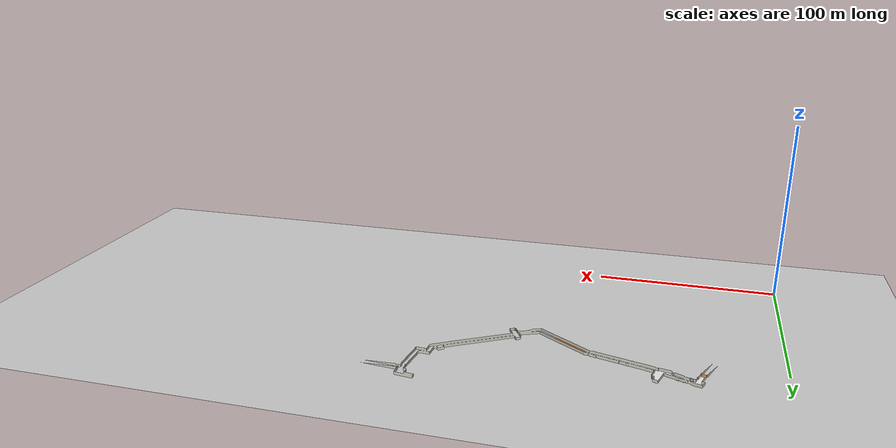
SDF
<sdf version="1.6">
 <world name="default">
  <physics type="ode">
   <gravity>0.000000 0.000000 -9.810000</gravity>
   <ode>
    <solver><type>quick</type><iters>20</iters><sor>1.000000</sor></solver>
    <constraints>
     <cfm>0.000000</cfm>
     <erp>0.200000</erp>
     <contact_max_correcting_vel>100.000000</contact_max_correcting_vel>
     <contact_surface_layer>0.000000</contact_surface_layer>
    </constraints>
   </ode>
   <real_time_update_rate>1000.000000</real_time_update_rate>
   <max_step_size>0.001000</max_step_size>
   <real_time_factor>1.000000</real_time_factor>
   <max_contacts>20</max_contacts>
  </physics>
  <light name="sun" type="directional">
   <pose>0 0 10 0 -0 0</pose>
   <diffuse>0.8 0.8 0.8 1</diffuse>
   <specular>0.2 0.2 0.2 1</specular>
   <attenuation>
    <range>1000</range>
    <constant>0.9</constant>
    <linear>0.01</linear>
    <quadratic>0.001</quadratic>
   </attenuation>
   <direction>-0.5 0.1 -0.9</direction>
  </light>
  <model name="ground_plane">
   <static>1</static>
   <link name="link">
    <visual name="visual">
     <cast_shadows>0</cast_shadows>
     <geometry><plane><normal>0 0 1</normal><size>100 100</size></plane></geometry>
     <material>
      <script><uri>file://media/materials/scripts/gazebo.material</uri><name>Gazebo/Grey</name></script>
     </material>
    </visual>
    <velocity_decay><linear>0</linear><angular>0</angular></velocity_decay>
   </link>
  </model>
  <scene><ambient>0.4 0.4 0.4 1</ambient><background>0.7 0.7 0.7 1</background><shadows>1</shadows></scene>
  <model name="hospital">
   <static>1</static>
   <link name="link">
    <collision name="colision1">
     <geometry><mesh><uri>model://hospital_map/meshes/hospital_map.stl</uri><scale>1 1 1</scale></mesh></geometry>
     <surface><friction><ode><mu>1000.000000</mu><mu2>1000.000000</mu2></ode></friction></surface>
    </collision>
    <velocity_decay><linear>0.000000</linear><angular>0.000000</angular></velocity_decay>
    <visual name="visual_Floor_1">
     <geometry><mesh><uri>model://hospital_map/meshes/g1.stl</uri><scale>0.1 0.1 0.1</scale></mesh></geometry>
     <material>
      <script><uri>file://media/materials/scripts/gazebo.material</uri><name>Gazebo/White</name></script>
     </material>
    </visual>
    <visual name="visual_Wall_1">
     <geometry><mesh><uri>model://hospital_map/meshes/w1.stl</uri><scale>0.1 0.1 0.1</scale></mesh></geometry>
     <material>
      <script><uri>file://media/materials/scripts/gazebo.material</uri><name>Gazebo/PaintedWall</name></script>
     </material>
    </visual>
    <visual name="visual_Floor_Ramp_1">
     <geometry><mesh><uri>model://hospital_map/meshes/gr1.stl</uri><scale>0.1 0.1 0.1</scale></mesh></geometry>
     <material>
      <script><uri>file://media/materials/scripts/gazebo.material</uri><name>Gazebo/Orange</name></script>
     </material>
    </visual>
    <visual name="visual_Wall_Ramp_1">
     <geometry><mesh><uri>model://hospital_map/meshes/wr1.stl</uri><scale>0.1 0.1 0.1</scale></mesh></geometry>
     <material>
      <script><uri>file://media/materials/scripts/gazebo.material</uri><name>Gazebo/PaintedWall</name></script>
     </material>
    </visual>
    <visual name="visual_Floor_2">
     <geometry><mesh><uri>model://hospital_map/meshes/g2.stl</uri><scale>0.1 0.1 0.1</scale></mesh></geometry>
     <material>
      <script><uri>file://media/materials/scripts/gazebo.material</uri><name>Gazebo/White</name></script>
     </material>
    </visual>
    <visual name="visual_Wall_2">
     <geometry><mesh><uri>model://hospital_map/meshes/w2.stl</uri><scale>0.1 0.1 0.1</scale></mesh></geometry>
     <material>
      <script><uri>file://media/materials/scripts/gazebo.material</uri><name>Gazebo/PaintedWall</name></script>
     </material>
    </visual>
    <visual name="visual_Floor_Ramp_2">
     <geometry><mesh><uri>model://hospital_map/meshes/gr2.stl</uri><scale>0.1 0.1 0.1</scale></mesh></geometry>
     <material>
      <script><uri>file://media/materials/scripts/gazebo.material</uri><name>Gazebo/Orange</name></script>
     </material>
    </visual>
    <visual name="visual_Wall_Ramp_2">
     <geometry><mesh><uri>model://hospital_map/meshes/wr2.stl</uri><scale>0.1 0.1 0.1</scale></mesh></geometry>
     <material>
      <script><uri>file://media/materials/scripts/gazebo.material</uri><name>Gazebo/PaintedWall</name></script>
     </material>
    </visual>
    <visual name="visual_Floor_3">
     <geometry><mesh><uri>model://hospital_map/meshes/g3.stl</uri><scale>0.1 0.1 0.1</scale></mesh></geometry>
     <material>
      <script><uri>file://media/materials/scripts/gazebo.material</uri><name>Gazebo/White</name></script>
     </material>
    </visual>
    <visual name="visual_Wall_3">
     <geometry><mesh><uri>model://hospital_map/meshes/w3.stl</uri><scale>0.1 0.1 0.1</scale></mesh></geometry>
     <material>
      <script><uri>file://media/materials/scripts/gazebo.material</uri><name>Gazebo/PaintedWall</name></script>
     </material>
    </visual>
    <visual name="visual_Floor_Ramp_3">
     <geometry><mesh><uri>model://hospital_map/meshes/gr3.stl</uri><scale>0.1 0.1 0.1</scale></mesh></geometry>
     <material>
      <script><uri>file://media/materials/scripts/gazebo.material</uri><name>Gazebo/Orange</name></script>
     </material>
    </visual>
    <visual name="visual_Wall_Ramp_3">
     <geometry><mesh><uri>model://hospital_map/meshes/wr3.stl</uri><scale>0.1 0.1 0.1</scale></mesh></geometry>
     <material>
      <script><uri>file://media/materials/scripts/gazebo.material</uri><name>Gazebo/PaintedWall</name></script>
     </material>
    </visual>
    <visual name="visual_Floor_4">
     <geometry><mesh><uri>model://hospital_map/meshes/g4.stl</uri><scale>0.1 0.1 0.1</scale></mesh></geometry>
     <material>
      <script><uri>file://media/materials/scripts/gazebo.material</uri><name>Gazebo/White</name></script>
     </material>
    </visual>
    <visual name="visual_Wall_4">
     <geometry><mesh><uri>model://hospital_map/meshes/w4.stl</uri><scale>0.1 0.1 0.1</scale></mesh></geometry>
     <material>
      <script><uri>file://media/materials/scripts/gazebo.material</uri><name>Gazebo/PaintedWall</name></script>
     </material>
    </visual>
    <visual name="visual_Floor_Ramp_4">
     <geometry><mesh><uri>model://hospital_map/meshes/gr4.stl</uri><scale>0.1 0.1 0.1</scale></mesh></geometry>
     <material>
      <script><uri>file://media/materials/scripts/gazebo.material</uri><name>Gazebo/Orange</name></script>
     </material>
    </visual>
    <visual name="visual_Wall_Ramp_4">
     <geometry><mesh><uri>model://hospital_map/meshes/wr1.stl</uri><scale>0.1 0.1 0.1</scale></mesh></geometry>
     <material>
      <script><uri>file://media/materials/scripts/gazebo.material</uri><name>Gazebo/PaintedWall</name></script>
     </material>
    </visual>
    <visual name="visual_Floor_5">
     <geometry><mesh><uri>model://hospital_map/meshes/g5.stl</uri><scale>0.1 0.1 0.1</scale></mesh></geometry>
     <material>
      <script><uri>file://media/materials/scripts/gazebo.material</uri><name>Gazebo/White</name></script>
     </material>
    </visual>
    <visual name="visual_Wall_5">
     <geometry><mesh><uri>model://hospital_map/meshes/w5.stl</uri><scale>0.1 0.1 0.1</scale></mesh></geometry>
     <material>
      <script><uri>file://media/materials/scripts/gazebo.material</uri><name>Gazebo/PaintedWall</name></script>
     </material>
    </visual>
    <visual name="visual_Floor_Ramp_5">
     <geometry><mesh><uri>model://hospital_map/meshes/gr5.stl</uri><scale>0.1 0.1 0.1</scale></mesh></geometry>
     <material>
      <script><uri>file://media/materials/scripts/gazebo.material</uri><name>Gazebo/Orange</name></script>
     </material>
    </visual>
    <visual name="visual_Wall_Ramp_5">
     <geometry><mesh><uri>model://hospital_map/meshes/wr5.stl</uri><scale>0.1 0.1 0.1</scale></mesh></geometry>
     <material>
      <script><uri>file://media/materials/scripts/gazebo.material</uri><name>Gazebo/PaintedWall</name></script>
     </material>
    </visual>
    <visual name="visual_Floor_6">
     <geometry><mesh><uri>model://hospital_map/meshes/g6.stl</uri><scale>0.1 0.1 0.1</scale></mesh></geometry>
     <material>
      <script><uri>file://media/materials/scripts/gazebo.material</uri><name>Gazebo/White</name></script>
     </material>
    </visual>
    <visual name="visual_Wall_6">
     <geometry><mesh><uri>model://hospital_map/meshes/w6.stl</uri><scale>0.1 0.1 0.1</scale></mesh></geometry>
     <material>
      <script><uri>file://media/materials/scripts/gazebo.material</uri><name>Gazebo/PaintedWall</name></script>
     </material>
    </visual>
    <visual name="visual_Floor_Ramp_6">
     <geometry><mesh><uri>model://hospital_map/meshes/gr6.stl</uri><scale>0.1 0.1 0.1</scale></mesh></geometry>
     <material>
      <script><uri>file://media/materials/scripts/gazebo.material</uri><name>Gazebo/Orange</name></script>
     </material>
    </visual>
    <visual name="visual_Wall_Ramp_6">
     <geometry><mesh><uri>model://hospital_map/meshes/wr6.stl</uri><scale>0.1 0.1 0.1</scale></mesh></geometry>
     <material>
      <script><uri>file://media/materials/scripts/gazebo.material</uri><name>Gazebo/PaintedWall</name></script>
     </material>
    </visual>
    <visual name="visual_Floor_7">
     <geometry><mesh><uri>model://hospital_map/meshes/g7.stl</uri><scale>0.1 0.1 0.1</scale></mesh></geometry>
     <material>
      <script><uri>file://media/materials/scripts/gazebo.material</uri><name>Gazebo/White</name></script>
     </material>
    </visual>
    <visual name="visual_Wall_7">
     <geometry><mesh><uri>model://hospital_map/meshes/w7.stl</uri><scale>0.1 0.1 0.1</scale></mesh></geometry>
     <material>
      <script><uri>file://media/materials/scripts/gazebo.material</uri><name>Gazebo/PaintedWall</name></script>
     </material>
    </visual>
   </link>
  </model>
 </world>
</sdf>
